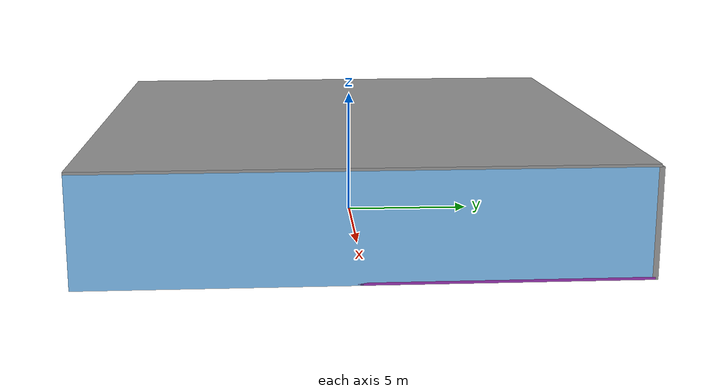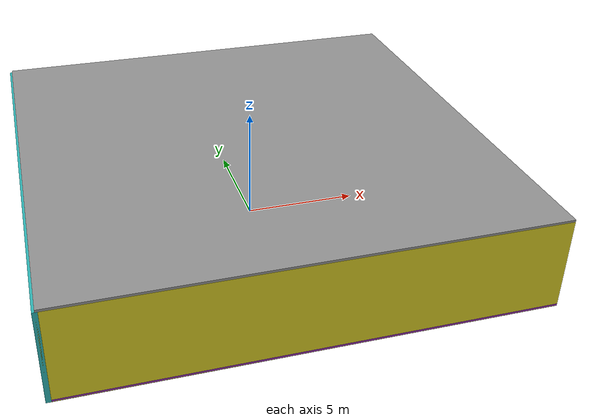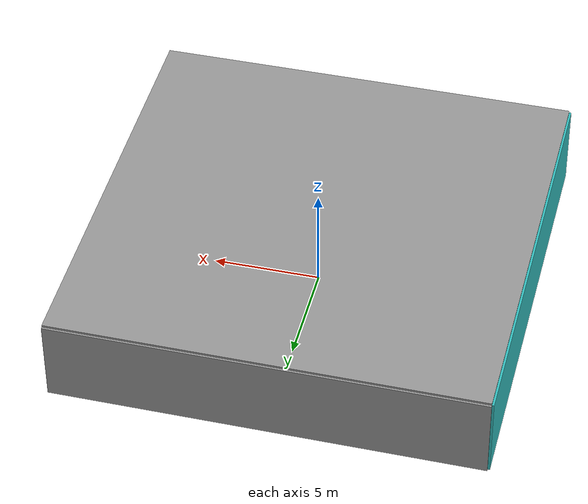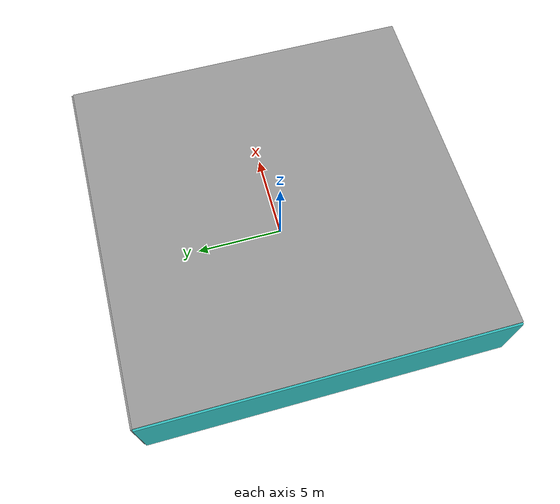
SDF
<sdf version="1.4">
 <world name="default">
  <physics type="ode">
   <max_step_size>0.001</max_step_size>
   <real_time_factor>1</real_time_factor>
   <real_time_update_rate>1000</real_time_update_rate>
   <gravity>0 0 -9.8</gravity>
  </physics>
  <scene><ambient>0.4 0.4 0.4 1</ambient><background>0.7 0.7 0.7 1</background><shadows>1</shadows></scene>
  <model name="Surrounding">
   <static>1</static>
   <link name="Ceiling">
    <collision name="Ceiling_Collision"><geometry><box><size>20 20 0.1</size></box></geometry></collision>
    <visual name="Ceiling_Visual">
     <geometry><box><size>20 20 0.1</size></box></geometry>
     <material>
      <script><uri>file://media/materials/scripts/gazebo.material</uri><name>Gazebo/GreyGradientSky</name></script>
     </material>
    </visual>
    <pose>0 0 4.05 0 0 0</pose>
   </link>
   <link name="Wall_South">
    <collision name="Wall_South_Collision">
     <geometry><box><size>20 0 4</size></box></geometry>
     <pose>0 0 2 0 -0 0</pose>
    </collision>
    <visual name="Wall_South_Visual">
     <pose>0 0 2 0 -0 0</pose>
     <geometry><box><size>20 0 4</size></box></geometry>
     <material>
      <script><uri>file://media/materials/scripts/gazebo.material</uri><name>Gazebo/YellowGlow</name></script>
     </material>
    </visual>
    <velocity_decay><linear>0</linear><angular>0</angular></velocity_decay>
    <pose>0 -10 0 0 -0 0</pose>
   </link>
   <link name="Wall_East">
    <collision name="Wall_21_Collision">
     <geometry><box><size>20 0 4</size></box></geometry>
     <pose>0 0 2 0 -0 0</pose>
    </collision>
    <visual name="Wall_21_Visual">
     <pose>0 0 2 0 -0 0</pose>
     <geometry><box><size>20 0 4</size></box></geometry>
     <material>
      <script><uri>file://media/materials/scripts/gazebo.material</uri><name>Gazebo/SkyBlue</name></script>
     </material>
    </visual>
    <velocity_decay><linear>0</linear><angular>0</angular></velocity_decay>
    <pose>10 0 0 0 -0 1.5708</pose>
   </link>
   <link name="Wall_North">
    <collision name="Wall_22_Collision">
     <geometry><box><size>20 0.2 4</size></box></geometry>
     <pose>0 0 2 0 -0 0</pose>
    </collision>
    <visual name="Wall_22_Visual">
     <pose>0 0 2 0 -0 0</pose>
     <geometry><box><size>20 0.2 4</size></box></geometry>
     <material>
      <script><uri>file://media/materials/scripts/gazebo.material</uri><name>Gazebo/Grey</name></script>
     </material>
    </visual>
    <velocity_decay><linear>0</linear><angular>0</angular></velocity_decay>
    <pose>0 10 0 0 -0 0</pose>
   </link>
   <link name="Wall_West">
    <collision name="Wall_23_Collision">
     <geometry><box><size>20 0.2 4</size></box></geometry>
     <pose>0 0 2 0 -0 0</pose>
    </collision>
    <visual name="Wall_23_Visual">
     <pose>0 0 2 0 -0 0</pose>
     <geometry><box><size>20 0.2 4</size></box></geometry>
     <material>
      <script>
       <uri>file://media/materials/scripts/gazebo.material</uri>
       <name>Gazebo/TurquoiseGlowOutline</name>
      </script>
     </material>
    </visual>
    <velocity_decay><linear>0</linear><angular>0</angular></velocity_decay>
    <pose>-10 0 0 0 0 -1.5708</pose>
   </link>
   <link name="Ground_link">
    <collision name="collision">
     <pose>0 0 .05 0 -0 0</pose>
     <geometry><box><size>20 20 0.1</size></box></geometry>
    </collision>
    <visual name="visual">
     <pose>0 0 .05 0 -0 0</pose>
     <geometry><box><size>20 20 0.1</size></box></geometry>
     <material>
      <script><uri>file://media/materials/scripts/gazebo.material</uri><name>Gazebo/PurpleGlow</name></script>
     </material>
    </visual>
   </link>
   <static>1</static>
  </model>
  <spherical_coordinates>
   <surface_model>EARTH_WGS84</surface_model>
   <latitude_deg>0</latitude_deg>
   <longitude_deg>0</longitude_deg>
   <elevation>0</elevation>
   <heading_deg>0</heading_deg>
  </spherical_coordinates>
  <light name="lightball_0" type="diffuse">
   <diffuse>0.8 0.8 0.8 1</diffuse>
   <specular>0.2 0.2 0.2 1</specular>
   <attenuation>
    <range>100</range>
    <constant>0.7</constant>
    <linear>0.01</linear>
    <quadratic>0.001</quadratic>
   </attenuation>
   <direction>-0.5 0.1 -0.9</direction>
   <pose>-4.93990532721 9.63905022183 1.46228348353 0 0 0</pose>
  </light>
  <light name="lightball_1" type="diffuse">
   <diffuse>0.8 0.8 0.8 1</diffuse>
   <specular>0.2 0.2 0.2 1</specular>
   <attenuation>
    <range>100</range>
    <constant>0.7</constant>
    <linear>0.01</linear>
    <quadratic>0.001</quadratic>
   </attenuation>
   <direction>-0.5 0.1 -0.9</direction>
   <pose>7.3793740342 3.03811525833 0.662076882511 0 0 0</pose>
  </light>
  <light name="lightball_2" type="diffuse">
   <diffuse>0.8 0.8 0.8 1</diffuse>
   <specular>0.2 0.2 0.2 1</specular>
   <attenuation>
    <range>100</range>
    <constant>0.7</constant>
    <linear>0.01</linear>
    <quadratic>0.001</quadratic>
   </attenuation>
   <direction>-0.5 0.1 -0.9</direction>
   <pose>3.51221533698 7.77452570875 1.32643825894 0 0 0</pose>
  </light>
  <light name="lightball_3" type="diffuse">
   <diffuse>0.8 0.8 0.8 1</diffuse>
   <specular>0.2 0.2 0.2 1</specular>
   <attenuation>
    <range>100</range>
    <constant>0.7</constant>
    <linear>0.01</linear>
    <quadratic>0.001</quadratic>
   </attenuation>
   <direction>-0.5 0.1 -0.9</direction>
   <pose>2.34733872162 -9.07078347172 2.86005500867 0 0 0</pose>
  </light>
  <light name="lightball_4" type="diffuse">
   <diffuse>0.8 0.8 0.8 1</diffuse>
   <specular>0.2 0.2 0.2 1</specular>
   <attenuation>
    <range>100</range>
    <constant>0.7</constant>
    <linear>0.01</linear>
    <quadratic>0.001</quadratic>
   </attenuation>
   <direction>-0.5 0.1 -0.9</direction>
   <pose>0.749558449283 -2.56462788068 2.65669061975 0 0 0</pose>
  </light>
  <light name="lightball_5" type="diffuse">
   <diffuse>0.8 0.8 0.8 1</diffuse>
   <specular>0.2 0.2 0.2 1</specular>
   <attenuation>
    <range>100</range>
    <constant>0.7</constant>
    <linear>0.01</linear>
    <quadratic>0.001</quadratic>
   </attenuation>
   <direction>-0.5 0.1 -0.9</direction>
   <pose>9.3527130768 6.55035675223 3.78914386071 0 0 0</pose>
  </light>
  <include><uri>model://cabinet</uri><pose>-6.56189867164 2.62697904734 0 0 0 1.72095449929</pose></include>
  <include>
   <uri>model://robocup_3Dsim_goal</uri>
   <pose>5.53562936513 -1.93348556812 0 0 0 2.6506749943</pose>
  </include>
  <include>
   <uri>model://textured_shapes</uri>
   <pose>4.90610593414 7.48393086729 0 0 0 2.81667185647</pose>
  </include>
 </world>
</sdf>

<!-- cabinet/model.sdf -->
<sdf version="1.5">
  <model name="cabinet">
    <static>true</static>
    <link name="cabinet_bottom_plate">
      <inertial>
        <pose>0 0 -1 0 0 0</pose>
        <inertia>
          <ixx>2.050000</ixx>
          <ixy>0</ixy>
          <ixz>0</ixz>
          <iyy>2.050000</iyy>
          <iyz>0</iyz>
          <izz>2.050000</izz>
        </inertia>
        <mass>25.000000</mass>
      </inertial>
      <collision name="cabinet_bottom_plate_geom">
        <pose>0 0 0.010000 0 0 0</pose>
        <geometry>
          <box>
            <size>0.450000 0.450000 0.020000</size>
          </box>
        </geometry>
      </collision>
      <visual name="cabinet_bottom_plate_geom_visual">
        <pose>0 0 0.010000 0 0 0</pose>
        <geometry>
          <box>
            <size>0.450000 0.450000 0.020000</size>
          </box>
        </geometry>
        <material>
          <script>
            <uri>model://media/materials/scripts/gazebo.material</uri>
            <name>Gazebo/Wood</name>
          </script>
        </material>
      </visual>
      <collision name="cabinet_bottom_plate_geom_cabinet_back_plate">
        <pose>0.235000 0 0.510000 0 0 0</pose>
        <geometry>
          <box>
            <size>0.020000 0.450000 1.020000</size>
          </box>
        </geometry>
      </collision>
      <visual name="cabinet_bottom_plate_geom_cabinet_back_plate_visual">
        <pose>0.235000 0 0.510000 0 0 0</pose>
        <geometry>
          <box>
            <size>0.020000 0.450000 1.020000</size>
          </box>
        </geometry>
        <material>
          <script>
            <uri>model://media/materials/scripts/gazebo.material</uri>
            <name>Gazebo/Wood</name>
          </script>
        </material>
      </visual>
      <collision name="cabinet_bottom_plate_geom_cabinet_left_plate">
        <pose>0 0.235000 0.510000 0 0 0</pose>
        <geometry>
          <box>
            <size>0.450000 0.020000 1.020000</size>
          </box>
        </geometry>
      </collision>
      <visual name="cabinet_bottom_plate_geom_cabinet_left_plate_visual">
        <pose>0 0.235000 0.510000 0 0 0</pose>
        <geometry>
          <box>
            <size>0.450000 0.020000 1.020000</size>
          </box>
        </geometry>
        <material>
          <script>
            <uri>model://media/materials/scripts/gazebo.material</uri>
            <name>Gazebo/Wood</name>
          </script>
        </material>
      </visual>
      <collision name="cabinet_bottom_plate_geom_cabinet_middle_plate">
        <pose>0 0 0.510000 0 0 0</pose>
        <geometry>
          <box>
            <size>0.450000 0.450000 0.020000</size>
          </box>
        </geometry>
      </collision>
      <visual name="cabinet_bottom_plate_geom_cabinet_middle_plate_visual">
        <pose>0 0 0.510000 0 0 0</pose>
        <geometry>
          <box>
            <size>0.450000 0.450000 0.020000</size>
          </box>
        </geometry>
        <material>
          <script>
            <uri>model://media/materials/scripts/gazebo.material</uri>
            <name>Gazebo/Wood</name>
          </script>
        </material>
      </visual>
      <collision name="cabinet_bottom_plate_geom_cabinet_right_plate">
        <pose>0 -0.235000 0.510000 0 0 0</pose>
        <geometry>
          <box>
            <size>0.450000 0.020000 1.020000</size>
          </box>
        </geometry>
      </collision>
      <visual name="cabinet_bottom_plate_geom_cabinet_right_plate_visual">
        <pose>0 -0.235000 0.510000 0 0 0</pose>
        <geometry>
          <box>
            <size>0.450000 0.020000 1.020000</size>
          </box>
        </geometry>
        <material>
          <script>
            <uri>model://media/materials/scripts/gazebo.material</uri>
            <name>Gazebo/Wood</name>
          </script>
        </material>
      </visual>
      <collision name="cabinet_bottom_plate_geom_cabinet_top_plate">
        <pose>0 0 1.010000 0 0 0</pose>
        <geometry>
          <box>
            <size>0.450000 0.450000 0.020000</size>
          </box>
        </geometry>
      </collision>
      <visual name="cabinet_bottom_plate_geom_cabinet_top_plate_visual">
        <pose>0 0 1.010000 0 0 0</pose>
        <geometry>
          <box>
            <size>0.450000 0.450000 0.020000</size>
          </box>
        </geometry>
        <material>
          <script>
            <uri>model://media/materials/scripts/gazebo.material</uri>
            <name>Gazebo/Wood</name>
          </script>
        </material>
      </visual>
    </link>
  </model>
</sdf>

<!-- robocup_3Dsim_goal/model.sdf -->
<sdf version="1.5">
  <model name="robocup_3d_goal">
    <static>true</static>
    <link name="left_post">
      <pose>0 1.05 0.45 0 0 0</pose>
      <collision name="collision">
        <geometry>
          <cylinder>
            <radius>0.05</radius>
            <length>0.9</length>
          </cylinder>
        </geometry>
      </collision>
      <visual name="visual">
        <geometry>
          <cylinder>
            <radius>0.05</radius>
            <length>0.9</length>
          </cylinder>
        </geometry>
        <material>
          <script>
            <uri>file://media/materials/scripts/gazebo.material</uri>
            <name>Gazebo/ZincYellow</name>
          </script>
        </material>
      </visual>
    </link>
    <link name="left_support_horiz_lower">
      <pose>0.30 1.05 0.01 0 0 0</pose>
      <collision name="collision">
        <geometry>
          <box>
            <size>0.50 0.02 0.02</size>
          </box>
        </geometry>
      </collision>
      <visual name="visual">
        <geometry>
          <box>
            <size>0.50 0.02 0.02</size>
          </box>
        </geometry>
        <material>
          <script>
            <uri>file://media/materials/scripts/gazebo.material</uri>
            <name>Gazebo/White</name>
          </script>
        </material>
      </visual>
    </link>
    <link name="left_support_horiz_upper">
      <pose>0.30 1.05 0.79 0 0 0</pose>
      <collision name="collision">
        <geometry>
          <box>
            <size>0.50 0.02 0.02</size>
          </box>
        </geometry>
      </collision>
      <visual name="visual">
        <geometry>
          <box>
            <size>0.50 0.02 0.02</size>
          </box>
        </geometry>
        <material>
          <script>
            <uri>file://media/materials/scripts/gazebo.material</uri>
            <name>Gazebo/White</name>
          </script>
        </material>
      </visual>
    </link>
    <link name="left_support_vertical">
      <pose>0.56 1.05 0.4 0 1.5708 0</pose>
      <collision name="collision">
        <geometry>
          <box>
            <size>0.80 0.02 0.02</size>
          </box>
        </geometry>
      </collision>
      <visual name="visual">
        <geometry>
          <box>
            <size>0.80 0.02 0.02</size>
          </box>
        </geometry>
        <material>
          <script>
            <uri>file://media/materials/scripts/gazebo.material</uri>
            <name>Gazebo/White</name>
          </script>
        </material>
      </visual>
    </link>
    <link name="right_support_horiz_lower">
      <pose>0.30 -1.05 0.01 0 0 0</pose>
      <collision name="collision">
        <geometry>
          <box>
            <size>0.50 0.02 0.02</size>
          </box>
        </geometry>
      </collision>
      <visual name="visual">
        <geometry>
          <box>
            <size>0.50 0.02 0.02</size>
          </box>
        </geometry>
        <material>
          <script>
            <uri>file://media/materials/scripts/gazebo.material</uri>
            <name>Gazebo/White</name>
          </script>
        </material>
      </visual>
    </link>
    <link name="right_support_horiz_upper">
      <pose>0.30 -1.05 0.79 0 0 0</pose>
      <collision name="collision">
        <geometry>
          <box>
            <size>0.50 0.02 0.02</size>
          </box>
        </geometry>
      </collision>
      <visual name="visual">
        <geometry>
          <box>
            <size>0.50 0.02 0.02</size>
          </box>
        </geometry>
        <material>
          <script>
            <uri>file://media/materials/scripts/gazebo.material</uri>
            <name>Gazebo/White</name>
          </script>
        </material>
      </visual>
    </link>
    <link name="right_support_vertical">
      <pose>0.56 -1.05 0.4 0 1.5708 0</pose>
      <collision name="collision">
        <geometry>
          <box>
            <size>0.80 0.02 0.02</size>
          </box>
        </geometry>
      </collision>
      <visual name="visual">
        <geometry>
          <box>
            <size>0.80 0.02 0.02</size>
          </box>
        </geometry>
        <material>
          <script>
            <uri>file://media/materials/scripts/gazebo.material</uri>
            <name>Gazebo/White</name>
          </script>
        </material>
      </visual>
    </link>
    <link name="center_support_horiz_lower">
      <pose>0.56 0 0.01 0 1.5708 0</pose>
      <collision name="collision">
        <geometry>
          <box>
            <size>0.02 2.08 0.02</size>
          </box>
        </geometry>
      </collision>
      <visual name="visual">
        <geometry>
          <box>
            <size>0.02 2.08 0.02</size>
          </box>
        </geometry>
        <material>
          <script>
            <uri>file://media/materials/scripts/gazebo.material</uri>
            <name>Gazebo/White</name>
          </script>
        </material>
      </visual>
    </link>
    <link name="center_support_horiz_upper">
      <pose>0.56 0 0.79 0 1.5708 0</pose>
      <collision name="collision">
        <geometry>
          <box>
            <size>0.02 2.08 0.02</size>
          </box>
        </geometry>
      </collision>
      <visual name="visual">
        <geometry>
          <box>
            <size>0.02 2.08 0.02</size>
          </box>
        </geometry>
        <material>
          <script>
            <uri>file://media/materials/scripts/gazebo.material</uri>
            <name>Gazebo/White</name>
          </script>
        </material>
      </visual>
    </link>
    <link name="right_post">
      <pose>0 -1.05 0.45 0 0 0</pose>
      <collision name="collision">
        <geometry>
          <cylinder>
            <radius>0.05</radius>
            <length>0.9</length>
          </cylinder>
        </geometry>
      </collision>
      <visual name="visual">
        <geometry>
          <cylinder>
            <radius>0.05</radius>
            <length>0.9</length>
          </cylinder>
        </geometry>
        <material>
          <script>
            <uri>file://media/materials/scripts/gazebo.material</uri>
            <name>Gazebo/ZincYellow</name>
          </script>
        </material>
      </visual>
    </link>
    <link name="crossbar">
      <pose>0 0 0.85 1.57 1.57 0</pose>
      <collision name="collision">
        <geometry>
          <cylinder>
            <radius>0.05</radius>
            <length>2.0</length>
          </cylinder>
        </geometry>
      </collision>
      <visual name="visual">
        <geometry>
          <cylinder>
            <radius>0.05</radius>
            <length>2.0</length>
          </cylinder>
        </geometry>
        <material>
          <script>
            <uri>file://media/materials/scripts/gazebo.material</uri>
            <name>Gazebo/ZincYellow</name>
          </script>
        </material>
      </visual>
    </link>
    <link name="center_net">
      <pose>0.56 0 0.40 0 0 0</pose>
      <collision name="collision">
        <geometry>
          <box>
            <size>0.01 2.1 0.80</size>
          </box>
        </geometry>
      </collision>
      <visual name="visual">
        <geometry>
          <box>
            <size>0.01 2.1 0.80</size>
          </box>
        </geometry>
        <material>
          <script>
            <uri>model://../model_source/models/robocup09_spl_field/materials/scripts/</uri>
            <uri>model://../model_source/models/robocup09_spl_field/materials/textures/</uri>
            <name>RoboCup/Net</name>
          </script>
        </material>
      </visual>
    </link>
    <link name="left_net">
      <pose>0.30 1.05 0.40 0 0 0</pose>
      <collision name="collision">
        <geometry>
          <box>
            <size>0.50 0.01 0.76</size>
          </box>
        </geometry>
      </collision>
      <visual name="visual">
        <geometry>
          <box>
            <size>0.50 0.01 0.76</size>
          </box>
        </geometry>
        <material>
          <script>
            <uri>model://../model_source/models/robocup09_spl_field/materials/scripts/</uri>
            <uri>model://../model_source/models/robocup09_spl_field/materials/textures/</uri>
            <name>RoboCup/Net</name>
          </script>
        </material>
      </visual>
    </link>
    <link name="right_net">
      <pose>0.30 -1.05 0.40 0 0 0</pose>
      <collision name="collision">
        <geometry>
          <box>
            <size>0.50 0.01 0.76</size>
          </box>
        </geometry>
      </collision>
      <visual name="visual">
        <geometry>
          <box>
            <size>0.50 0.01 0.76</size>
          </box>
        </geometry>
        <material>
          <script>
            <uri>model://../model_source/models/robocup09_spl_field/materials/scripts/</uri>
            <uri>model://../model_source/models/robocup09_spl_field/materials/textures/</uri>
            <name>RoboCup/Net</name>
          </script>
        </material>
      </visual>
    </link>
  </model>
</sdf>

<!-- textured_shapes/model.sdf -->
<sdf version="1.6">
  <model name="textured_shapes">
    <pose>0 0 0.5 0 0 0</pose>
    <link name="box">
      <pose>0 -1.5 0 0 0 0</pose>
      <collision name="collision">
        <geometry>
          <box>
            <size>1 1 1</size>
          </box>
        </geometry>
      </collision>
      <visual name="visual">
        <geometry>
          <box>
            <size>1 1 1</size>
          </box>
        </geometry>
        <material>
          <script>
            <uri>model://../model_source/models/textured_shapes/materials/scripts</uri>
            <uri>model://../model_source/models/textured_shapes/materials/textures</uri>
            <name>TexturedShape/Squares</name>
          </script>
        </material>
      </visual>
    </link>
    <link name="sphere">
      <collision name="collision">
        <geometry>
          <sphere>
            <radius>0.5</radius>
          </sphere>
        </geometry>
      </collision>
      <visual name="visual">
        <geometry>
          <sphere>
            <radius>0.5</radius>
          </sphere>
        </geometry>
        <material>
          <script>
            <uri>model://../model_source/models/textured_shapes/materials/scripts</uri>
            <uri>model://../model_source/models/textured_shapes/materials/textures</uri>
            <name>TexturedShape/Squares</name>
          </script>
        </material>
      </visual>
    </link>
    <link name="cylinder">
      <pose>0 1.5 0 0 0 0</pose>
      <collision name="collision">
        <geometry>
          <cylinder>
            <radius>0.5</radius>
            <length>1</length>
          </cylinder>
        </geometry>
      </collision>
      <visual name="visual">
        <geometry>
          <cylinder>
            <radius>0.5</radius>
            <length>1</length>
          </cylinder>
        </geometry>
        <material>
          <script>
            <uri>model://../model_source/models/textured_shapes/materials/scripts</uri>
            <uri>model://../model_source/models/textured_shapes/materials/textures</uri>
            <name>TexturedShape/Squares</name>
          </script>
        </material>
      </visual>
    </link>
  </model>
</sdf>
